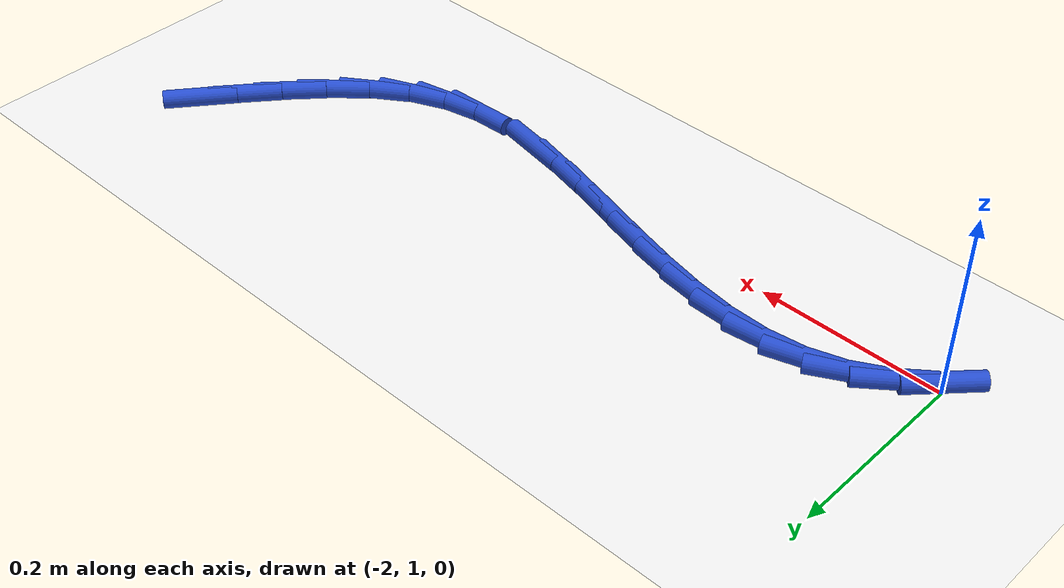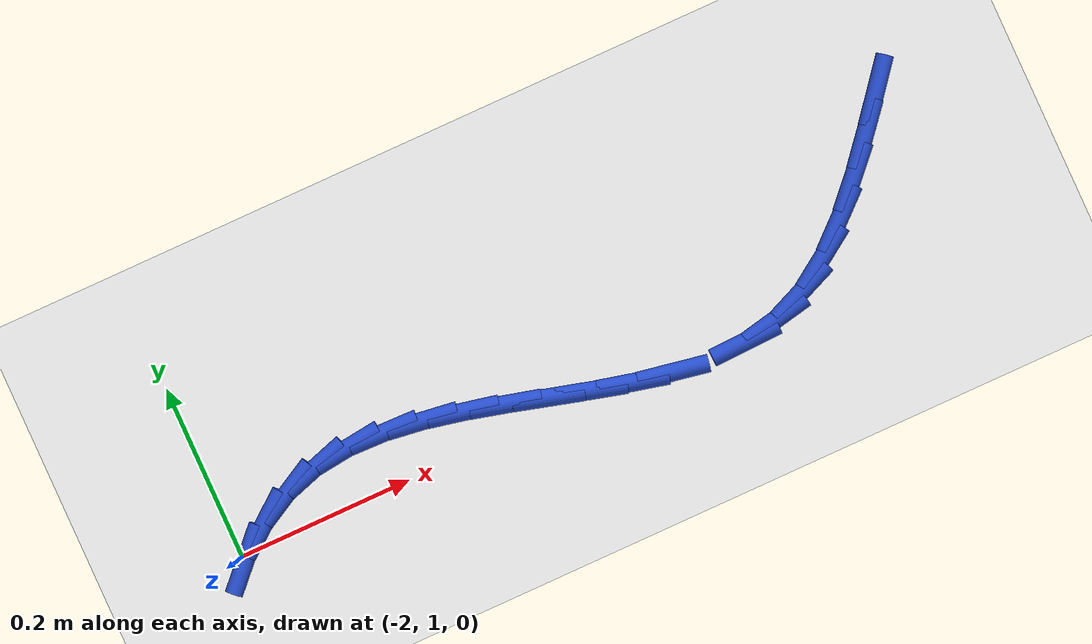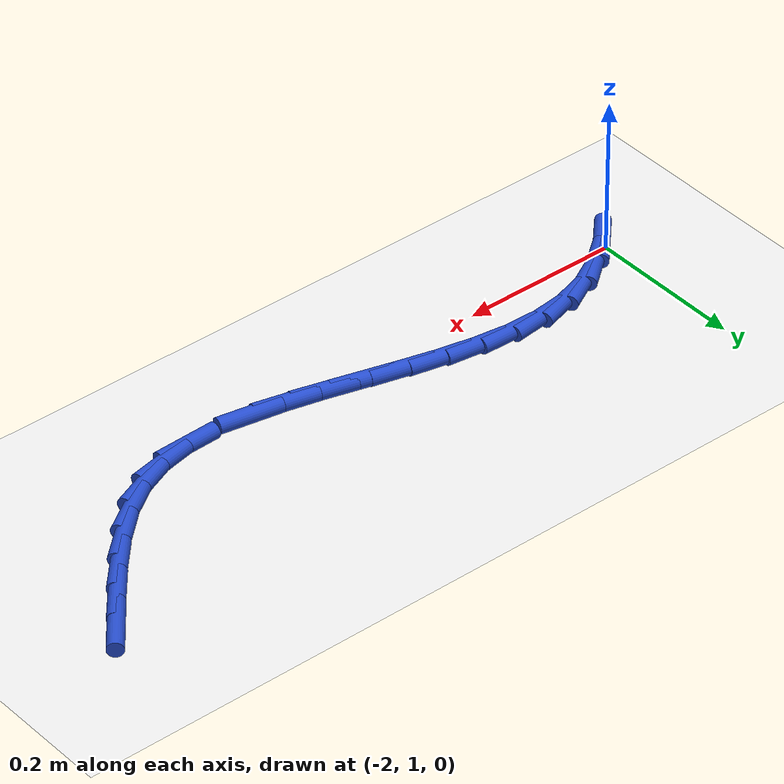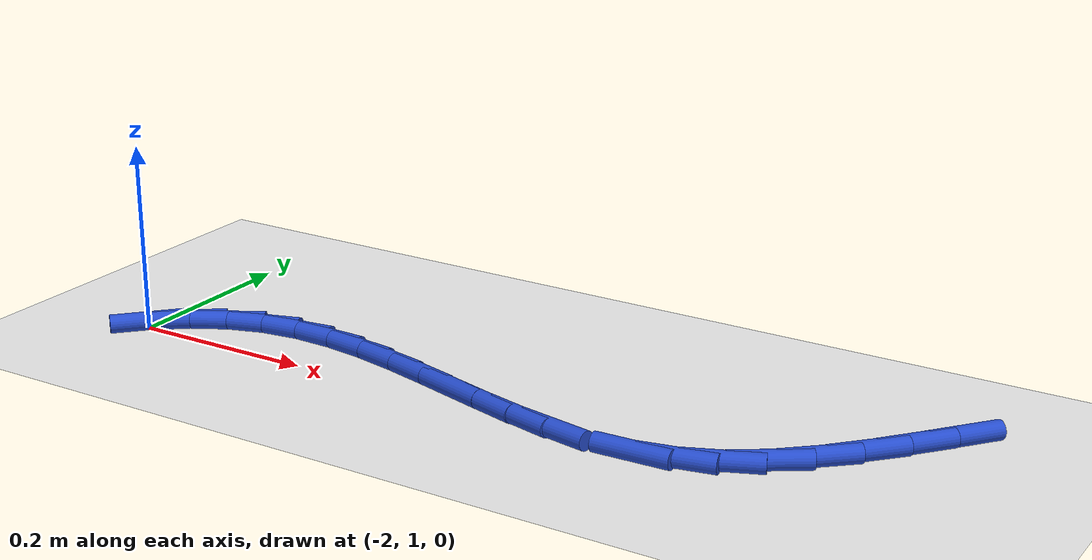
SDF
<sdf version="1.6">
 <world name="default">
  <model name="ground_plane">
   <static>1</static>
   <link name="link">
    <collision name="collision">
     <geometry><plane><normal>0 0 1</normal><size>100 100</size></plane></geometry>
     <surface><friction><ode><mu>100</mu><mu2>50</mu2></ode></friction></surface>
    </collision>
    <visual name="visual">
     <cast_shadows>0</cast_shadows>
     <geometry><plane><normal>0 0 1</normal><size>100 100</size></plane></geometry>
     <material>
      <script><uri>file://media/materials/scripts/gazebo.material</uri><name>Gazebo/WhiteGlow</name></script>
     </material>
    </visual>
   </link>
  </model>
  <model name="line">
   <link name="link_45">
    <pose>-1.1617501980746763 1.175717895075094 0.01 0 1.57 0.8966750953807631</pose>
    <collision name="collision">
     <geometry><cylinder><radius>0.01</radius><length>0.08</length></cylinder></geometry>
    </collision>
    <visual name="visual">
     <material>
      <script><name>Gazebo/Blue</name><uri>file://media/materials/scripts/gazebo.material</uri></script>
     </material>
     <geometry><cylinder><radius>0.01</radius><length>0.08</length></cylinder></geometry>
    </visual>
   </link>
   <link name="link_46">
    <pose>-1.192159022278882 1.1376585378927824 0.01 0 1.57 0.8757128159286771</pose>
    <collision name="collision">
     <geometry><cylinder><radius>0.01</radius><length>0.08</length></cylinder></geometry>
    </collision>
    <visual name="visual">
     <material>
      <script><name>Gazebo/Blue</name><uri>file://media/materials/scripts/gazebo.material</uri></script>
     </material>
     <geometry><cylinder><radius>0.01</radius><length>0.08</length></cylinder></geometry>
    </visual>
   </link>
   <link name="link_47">
    <pose>-1.2234425295942688 1.1001446705717783 0.01 0 1.57 0.8227682890199755</pose>
    <collision name="collision">
     <geometry><cylinder><radius>0.01</radius><length>0.08</length></cylinder></geometry>
    </collision>
    <visual name="visual">
     <material>
      <script><name>Gazebo/Blue</name><uri>file://media/materials/scripts/gazebo.material</uri></script>
     </material>
     <geometry><cylinder><radius>0.01</radius><length>0.08</length></cylinder></geometry>
    </visual>
   </link>
   <link name="link_48">
    <pose>-1.2559368675985043 1.0651261951304458 0.01 0 1.57 0.7317753680354135</pose>
    <collision name="collision">
     <geometry><cylinder><radius>0.01</radius><length>0.08</length></cylinder></geometry>
    </collision>
    <visual name="visual">
     <material>
      <script><name>Gazebo/Blue</name><uri>file://media/materials/scripts/gazebo.material</uri></script>
     </material>
     <geometry><cylinder><radius>0.01</radius><length>0.08</length></cylinder></geometry>
    </visual>
   </link>
   <link name="link_49">
    <pose>-1.2899781838692568 1.0345530135871464 0.01 0 1.57 0.5923904299504142</pose>
    <collision name="collision">
     <geometry><cylinder><radius>0.01</radius><length>0.08</length></cylinder></geometry>
    </collision>
    <visual name="visual">
     <material>
      <script><name>Gazebo/Blue</name><uri>file://media/materials/scripts/gazebo.material</uri></script>
     </material>
     <geometry><cylinder><radius>0.01</radius><length>0.08</length></cylinder></geometry>
    </visual>
   </link>
   <link name="link_50">
    <pose>-1.3259026259841944 1.0103750279602415 0.01 0 1.57 0.39872541099691333</pose>
    <collision name="collision">
     <geometry><cylinder><radius>0.01</radius><length>0.08</length></cylinder></geometry>
    </collision>
    <visual name="visual">
     <material>
      <script><name>Gazebo/Blue</name><uri>file://media/materials/scripts/gazebo.material</uri></script>
     </material>
     <geometry><cylinder><radius>0.01</radius><length>0.08</length></cylinder></geometry>
    </visual>
   </link>
   <link name="link_51">
    <pose>-1.364001196661025 0.9943244201579707 0.01 0 1.57 0.20021233508018516</pose>
    <collision name="collision">
     <geometry><cylinder><radius>0.01</radius><length>0.08</length></cylinder></geometry>
    </collision>
    <visual name="visual">
     <material>
      <script><name>Gazebo/Blue</name><uri>file://media/materials/scripts/gazebo.material</uri></script>
     </material>
     <geometry><cylinder><radius>0.01</radius><length>0.08</length></cylinder></geometry>
    </visual>
   </link>
   <link name="link_52">
    <pose>-1.4041588622783958 0.9861751806902 0.01 0 1.57 0.036023812036118166</pose>
    <collision name="collision">
     <geometry><cylinder><radius>0.01</radius><length>0.08</length></cylinder></geometry>
    </collision>
    <visual name="visual">
     <material>
      <script><name>Gazebo/Blue</name><uri>file://media/materials/scripts/gazebo.material</uri></script>
     </material>
     <geometry><cylinder><radius>0.01</radius><length>0.08</length></cylinder></geometry>
    </visual>
   </link>
   <link name="link_54">
    <pose>-1.489330370412135 0.9885245523165193 0.01 0 1.57 -0.17750972775380994</pose>
    <collision name="collision">
     <geometry><cylinder><radius>0.01</radius><length>0.08</length></cylinder></geometry>
    </collision>
    <visual name="visual">
     <material>
      <script><name>Gazebo/Blue</name><uri>file://media/materials/scripts/gazebo.material</uri></script>
     </material>
     <geometry><cylinder><radius>0.01</radius><length>0.08</length></cylinder></geometry>
    </visual>
   </link>
   <link name="link_55">
    <pose>-1.533680731193668 0.9964809164168013 0.01 0 1.57 -0.23475594887704712</pose>
    <collision name="collision">
     <geometry><cylinder><radius>0.01</radius><length>0.08</length></cylinder></geometry>
    </collision>
    <visual name="visual">
     <material>
      <script><name>Gazebo/Blue</name><uri>file://media/materials/scripts/gazebo.material</uri></script>
     </material>
     <geometry><cylinder><radius>0.01</radius><length>0.08</length></cylinder></geometry>
    </visual>
   </link>
   <link name="link_56">
    <pose>-1.5787651752950846 1.0072635680459594 0.01 0 1.57 -0.26486680333086177</pose>
    <collision name="collision">
     <geometry><cylinder><radius>0.01</radius><length>0.08</length></cylinder></geometry>
    </collision>
    <visual name="visual">
     <material>
      <script><name>Gazebo/Blue</name><uri>file://media/materials/scripts/gazebo.material</uri></script>
     </material>
     <geometry><cylinder><radius>0.01</radius><length>0.08</length></cylinder></geometry>
    </visual>
   </link>
   <link name="link_57">
    <pose>-1.624251961848968 1.0196013837070896 0.01 0 1.57 -0.2702747852639967</pose>
    <collision name="collision">
     <geometry><cylinder><radius>0.01</radius><length>0.08</length></cylinder></geometry>
    </collision>
    <visual name="visual">
     <material>
      <script><name>Gazebo/Blue</name><uri>file://media/materials/scripts/gazebo.material</uri></script>
     </material>
     <geometry><cylinder><radius>0.01</radius><length>0.08</length></cylinder></geometry>
    </visual>
   </link>
   <link name="link_58">
    <pose>-1.6698093499879 1.0322232399032885 0.01 0 1.57 -0.2514241996928609</pose>
    <collision name="collision">
     <geometry><cylinder><radius>0.01</radius><length>0.08</length></cylinder></geometry>
    </collision>
    <visual name="visual">
     <material>
      <script><name>Gazebo/Blue</name><uri>file://media/materials/scripts/gazebo.material</uri></script>
     </material>
     <geometry><cylinder><radius>0.01</radius><length>0.08</length></cylinder></geometry>
    </visual>
   </link>
   <link name="link_59">
    <pose>-1.715105598844462 1.0438580131376518 0.01 0 1.57 -0.20675349552007033</pose>
    <collision name="collision">
     <geometry><cylinder><radius>0.01</radius><length>0.08</length></cylinder></geometry>
    </collision>
    <visual name="visual">
     <material>
      <script><name>Gazebo/Blue</name><uri>file://media/materials/scripts/gazebo.material</uri></script>
     </material>
     <geometry><cylinder><radius>0.01</radius><length>0.08</length></cylinder></geometry>
    </visual>
   </link>
   <link name="link_60">
    <pose>-1.7598089675512354 1.0532345799132754 0.01 0 1.57 -0.13277753829971048</pose>
    <collision name="collision">
     <geometry><cylinder><radius>0.01</radius><length>0.08</length></cylinder></geometry>
    </collision>
    <visual name="visual">
     <material>
      <script><name>Gazebo/Blue</name><uri>file://media/materials/scripts/gazebo.material</uri></script>
     </material>
     <geometry><cylinder><radius>0.01</radius><length>0.08</length></cylinder></geometry>
    </visual>
   </link>
   <link name="link_61">
    <pose>-1.8035877152408042 1.0590818167332556 0.01 0 1.57 -0.02461225943537822</pose>
    <collision name="collision">
     <geometry><cylinder><radius>0.01</radius><length>0.08</length></cylinder></geometry>
    </collision>
    <visual name="visual">
     <material>
      <script><name>Gazebo/Blue</name><uri>file://media/materials/scripts/gazebo.material</uri></script>
     </material>
     <geometry><cylinder><radius>0.01</radius><length>0.08</length></cylinder></geometry>
    </visual>
   </link>
   <link name="link_62">
    <pose>-1.8461101010457486 1.0601286001006887 0.01 0 1.57 0.12214165535891941</pose>
    <collision name="collision">
     <geometry><cylinder><radius>0.01</radius><length>0.08</length></cylinder></geometry>
    </collision>
    <visual name="visual">
     <material>
      <script><name>Gazebo/Blue</name><uri>file://media/materials/scripts/gazebo.material</uri></script>
     </material>
     <geometry><cylinder><radius>0.01</radius><length>0.08</length></cylinder></geometry>
    </visual>
   </link>
   <link name="link_63">
    <pose>-1.887044384098651 1.05510380651867 0.01 0 1.57 0.3065289898121416</pose>
    <collision name="collision">
     <geometry><cylinder><radius>0.01</radius><length>0.08</length></cylinder></geometry>
    </collision>
    <visual name="visual">
     <material>
      <script><name>Gazebo/Blue</name><uri>file://media/materials/scripts/gazebo.material</uri></script>
     </material>
     <geometry><cylinder><radius>0.01</radius><length>0.08</length></cylinder></geometry>
    </visual>
   </link>
   <link name="link_64">
    <pose>-1.9260586694177841 1.0427556068904404 0.01 0 1.57 0.49922334966378734</pose>
    <collision name="collision">
     <geometry><cylinder><radius>0.01</radius><length>0.08</length></cylinder></geometry>
    </collision>
    <visual name="visual">
     <material>
      <script><name>Gazebo/Blue</name><uri>file://media/materials/scripts/gazebo.material</uri></script>
     </material>
     <geometry><cylinder><radius>0.01</radius><length>0.08</length></cylinder></geometry>
    </visual>
   </link>
   <link name="link_65">
    <pose>-1.962814025483637 1.0227131141729793 0.01 0 1.57 0.6668903602043066</pose>
    <collision name="collision">
     <geometry><cylinder><radius>0.01</radius><length>0.08</length></cylinder></geometry>
    </collision>
    <visual name="visual">
     <material>
      <script><name>Gazebo/Blue</name><uri>file://media/materials/scripts/gazebo.material</uri></script>
     </material>
     <geometry><cylinder><radius>0.01</radius><length>0.08</length></cylinder></geometry>
    </visual>
   </link>
   <link name="link_66">
    <pose>-1.9969617246605496 0.9958318698512343 0.01 0 1.57 0.8101427581042655</pose>
    <collision name="collision">
     <geometry><cylinder><radius>0.01</radius><length>0.08</length></cylinder></geometry>
    </collision>
    <visual name="visual">
     <material>
      <script><name>Gazebo/Blue</name><uri>file://media/materials/scripts/gazebo.material</uri></script>
     </material>
     <geometry><cylinder><radius>0.01</radius><length>0.08</length></cylinder></geometry>
    </visual>
   </link>
  </model>
 </world>
</sdf>
